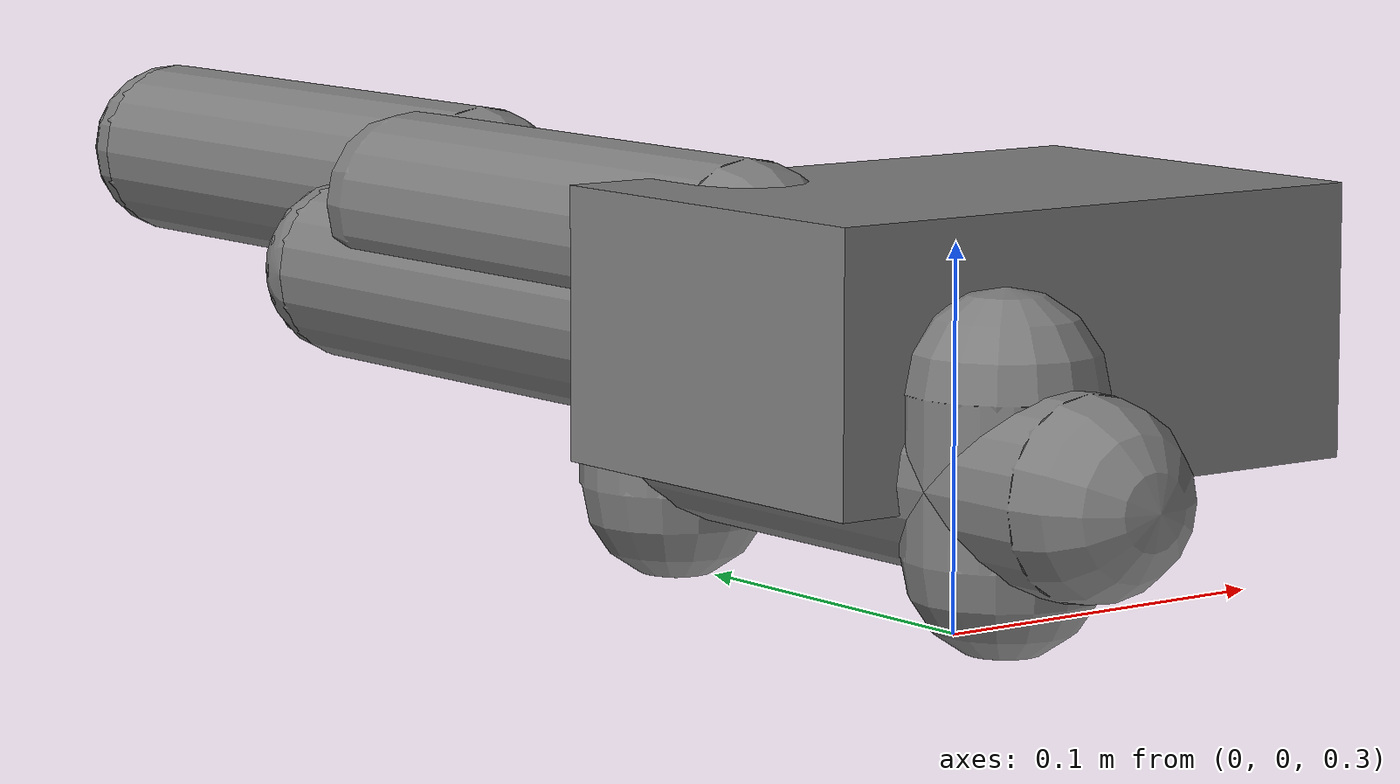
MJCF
<mujoco model="pe01_scene">
  <include file="pe01.xml"/>
  <visual><global azimuth="135" elevation="-20"/></visual>
  <worldbody>
    <light pos="0 0 3" directional="true"/>
    <geom name="floor" type="plane" size="0 0 0.05" rgba="0.25 0.3 0.35 1"/>
    <camera name="follow" pos="1.2 -1.2 0.8" xyaxes="0.707 0.707 0 -0.3 0.3 0.906"/>
  </worldbody>
  <keyframe>
    <!-- Original PE01 init_state, in catalog joint order. Mechanical zero is unchanged. -->
    <key name="home" qpos="0 0 0.32 1 0 0 0 -0.1 0.6 -1.2 0.1 0.6 -1.2"/>
  </keyframe>
</mujoco>

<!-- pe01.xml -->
<mujoco model="pe01">
  <compiler angle="radian"/>
  <option timestep="0.0025" gravity="0 0 -9.81" integrator="implicitfast"/>
  <default>
    <joint damping="0.2" armature="0.01"/>
    <geom type="capsule" size="0.025" density="500" friction="0.8 0.02 0.001"/>
    <motor ctrllimited="true" ctrlrange="-1 1"/>
  </default>
  <worldbody>
    <body name="trunk" pos="0 0 0.38">
      <freejoint name="root"/>
      <inertial pos="-0.00195686 -0.00021202 0.00523385" mass="1.005466"
                fullinertia="0.00280656 0.00221498 0.00328795 0.0000022 0.00027951 0.00000817"/>
      <geom name="trunk_collision" type="box" size="0.08 0.055 0.035"/>
      <body name="left_hip" pos="-0.03925 0.065 -0.006" euler="1.5708 0 -1.5708">
        <joint name="left_hip_joint" axis="0 0 1" range="-1.6 0.8"/>
        <geom fromto="0 0 0 0.04 0 0"/>
        <body name="left_thigh" pos="-0.02185 0 0.03" euler="1.5708 0 -1.5708">
          <joint name="left_thigh_joint" axis="0 0 1" range="-0.436 1.221"/>
          <geom fromto="0 0 0 0.15 0 0"/>
          <body name="left_calf" pos="0.15 0 -0.0219">
            <joint name="left_calf_joint" axis="0 0 1" range="-2.669 -0.33" armature="0.0193715"/>
            <geom fromto="0 0 0 0.16209 0 0"/>
            <body name="left_foot" pos="0.16209 0 0" euler="1.5708 0 -1.5708">
              <geom name="left_foot_collision" type="sphere" size="0.025" mass="0.0509"/>
            </body>
          </body>
        </body>
      </body>
      <body name="right_hip" pos="-0.03895 -0.0652 -0.006" euler="1.5708 0 -1.5708">
        <joint name="right_hip_joint" axis="0 0 1" range="-0.8 1.6"/>
        <geom fromto="0 0 0 0.04 0 0"/>
        <body name="right_thigh" pos="0.02185 0 0.0303" euler="0 1.5708 0">
          <joint name="right_thigh_joint" axis="0 0 -1" range="-0.436 1.221"/>
          <geom fromto="0 0 0 0.15 0 0"/>
          <body name="right_calf" pos="0.15 0 -0.0219">
            <joint name="right_calf_joint" axis="0 0 1" range="-2.669 -0.33" armature="0.0193715"/>
            <geom fromto="0 0 0 0.16209 0 0"/>
            <body name="right_foot" pos="0.16209 0 0" euler="1.5708 0 -1.5708">
              <geom name="right_foot_collision" type="sphere" size="0.025" mass="0.0509"/>
            </body>
          </body>
        </body>
      </body>
    </body>
  </worldbody>
  <actuator>
    <motor name="left_hip" joint="left_hip_joint" gear="5.5"/>
    <motor name="left_thigh" joint="left_thigh_joint" gear="5.5"/>
    <motor name="left_calf" joint="left_calf_joint" gear="14"/>
    <motor name="right_hip" joint="right_hip_joint" gear="5.5"/>
    <motor name="right_thigh" joint="right_thigh_joint" gear="5.5"/>
    <motor name="right_calf" joint="right_calf_joint" gear="14"/>
  </actuator>
</mujoco>
